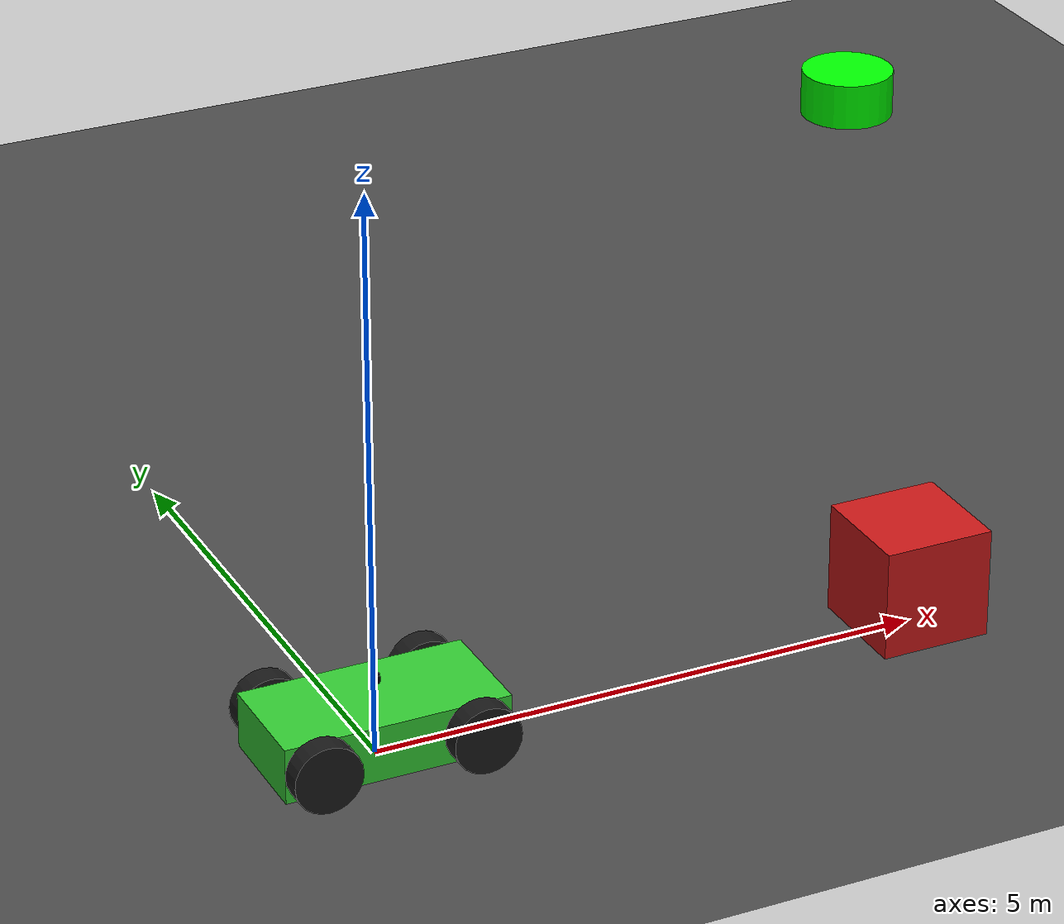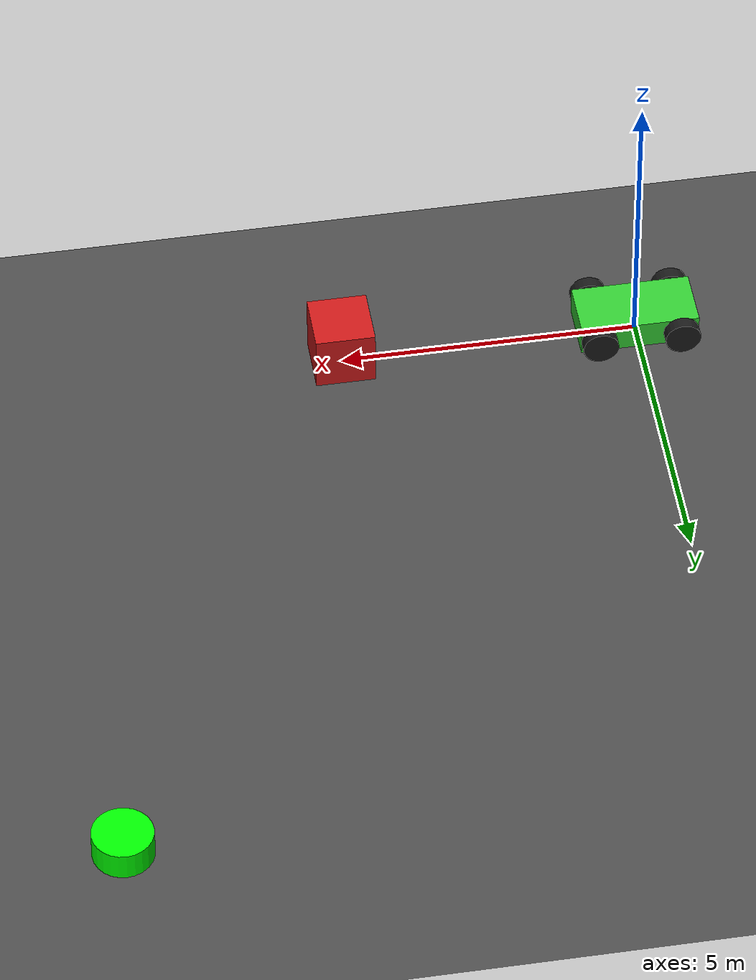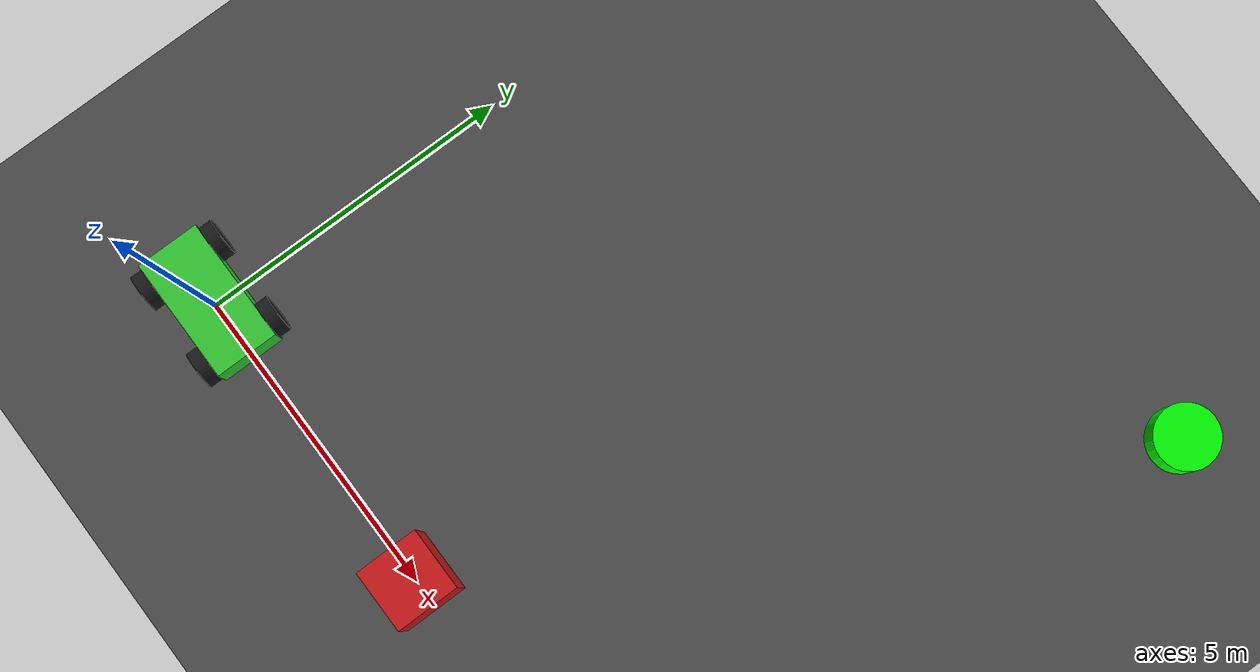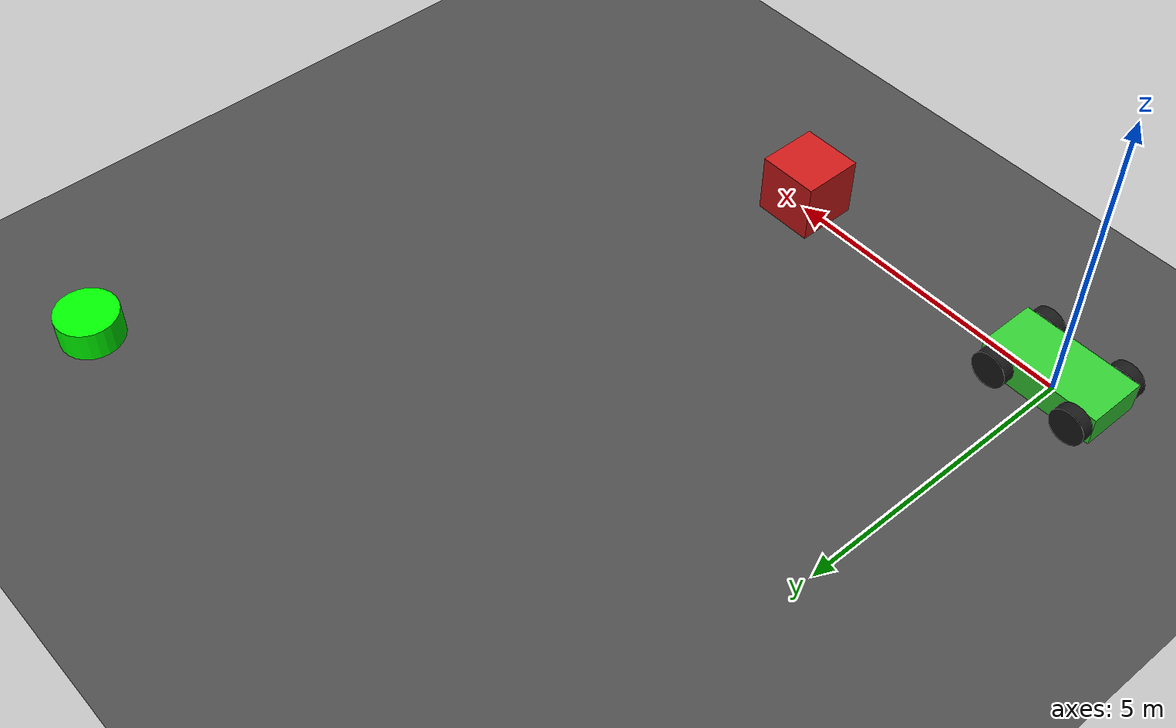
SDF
<?xml version="1.0"?>
<sdf version="1.9">
  <world name="rl_test_world">

    <physics name="1ms" type="ignored">
      <max_step_size>0.001</max_step_size>
      <real_time_factor>1.0</real_time_factor>
    </physics>

    <light type="directional" name="sun">
      <cast_shadows>true</cast_shadows>
      <pose>0 0 10 0 0 0</pose>
      <diffuse>0.8 0.8 0.8 1</diffuse>
      <specular>0.2 0.2 0.2 1</specular>
      <direction>-0.5 0.1 -0.9</direction>
    </light>

    <model name="ground_plane">
      <static>true</static>
      <link name="link">
        <collision name="collision">
          <geometry>
            <plane>
              <normal>0 0 1</normal>
              <size>30 30</size>
            </plane>
          </geometry>
        </collision>
        <visual name="visual">
          <geometry>
            <plane>
              <normal>0 0 1</normal>
              <size>30 30</size>
            </plane>
          </geometry>
          <material>
            <ambient>0.3 0.3 0.3 1</ambient>
            <diffuse>0.3 0.3 0.3 1</diffuse>
          </material>
        </visual>
      </link>
    </model>

    <!-- Test obstacle -->
    <model name="obstacle_1">
      <static>true</static>
      <pose>5 0 0.5 0 0 0</pose>
      <link name="link">
        <collision name="collision">
          <geometry>
            <box>
              <size>1 1 1</size>
            </box>
          </geometry>
        </collision>
        <visual name="visual">
          <geometry>
            <box>
              <size>1 1 1</size>
            </box>
          </geometry>
          <material>
            <ambient>0.8 0.1 0.1 1</ambient>
            <diffuse>0.8 0.1 0.1 1</diffuse>
          </material>
        </visual>
      </link>
    </model>

    <!-- Goal marker -->
    <model name="goal">
      <static>true</static>
      <pose>10 10 0.25 0 0 0</pose>
      <link name="link">
        <visual name="visual">
          <geometry>
            <cylinder>
              <radius>0.5</radius>
              <length>0.5</length>
            </cylinder>
          </geometry>
          <material>
            <ambient>0.0 1.0 0.0 1</ambient>
            <diffuse>0.0 1.0 0.0 1</diffuse>
            <emissive>0.0 0.5 0.0 1</emissive>
          </material>
        </visual>
      </link>
    </model>

    <!-- Include the training car model (inline for simplicity) -->
    <model name="robot">
      <pose>0 0 0 0 0 0</pose>

      <!-- Base Link -->
      <link name="base_link">
        <pose>0 0 0.3 0 0 0</pose>
        <inertial>
          <mass>100.0</mass>
          <inertia>
            <ixx>10.0</ixx>
            <iyy>10.0</iyy>
            <izz>10.0</izz>
          </inertia>
        </inertial>
        <collision name="collision">
          <geometry>
            <box>
              <size>2.0 1.0 0.5</size>
            </box>
          </geometry>
        </collision>
        <visual name="visual">
          <geometry>
            <box>
              <size>2.0 1.0 0.5</size>
            </box>
          </geometry>
          <material>
            <ambient>0.2 0.8 0.2 1.0</ambient>
            <diffuse>0.2 0.8 0.2 1.0</diffuse>
          </material>
        </visual>
      </link>

      <!-- LiDAR -->
      <link name="lidar_link">
        <pose relative_to="base_link">0 0 0.4 0 0 0</pose>
        <inertial>
          <mass>0.1</mass>
          <inertia>
            <ixx>0.001</ixx>
            <iyy>0.001</iyy>
            <izz>0.001</izz>
          </inertia>
        </inertial>
        <visual name="visual">
          <geometry>
            <cylinder>
              <radius>0.05</radius>
              <length>0.07</length>
            </cylinder>
          </geometry>
          <material>
            <ambient>0.0 0.0 0.0 1.0</ambient>
            <diffuse>0.0 0.0 0.0 1.0</diffuse>
          </material>
        </visual>
        <sensor name="lidar" type="gpu_lidar">
          <topic>/scan</topic>
          <update_rate>10</update_rate>
          <lidar>
            <scan>
              <horizontal>
                <samples>360</samples>
                <resolution>1</resolution>
                <min_angle>-3.14159</min_angle>
                <max_angle>3.14159</max_angle>
              </horizontal>
            </scan>
            <range>
              <min>0.1</min>
              <max>10.0</max>
              <resolution>0.01</resolution>
            </range>
            <noise>
              <type>gaussian</type>
              <mean>0.0</mean>
              <stddev>0.01</stddev>
            </noise>
          </lidar>
          <always_on>1</always_on>
          <visualize>true</visualize>
        </sensor>
      </link>
      <joint name="lidar_joint" type="fixed">
        <parent>base_link</parent>
        <child>lidar_link</child>
      </joint>

      <!-- Wheels -->
      <link name="front_left_wheel">
        <pose relative_to="base_link">0.7 0.6 0 -1.5708 0 0</pose>
        <inertial>
          <mass>5.0</mass>
          <inertia>
            <ixx>0.1</ixx>
            <iyy>0.1</iyy>
            <izz>0.1</izz>
          </inertia>
        </inertial>
        <collision name="collision">
          <geometry>
            <cylinder>
              <radius>0.3</radius>
              <length>0.2</length>
            </cylinder>
          </geometry>
        </collision>
        <visual name="visual">
          <geometry>
            <cylinder>
              <radius>0.3</radius>
              <length>0.2</length>
            </cylinder>
          </geometry>
          <material>
            <ambient>0.1 0.1 0.1 1.0</ambient>
            <diffuse>0.1 0.1 0.1 1.0</diffuse>
          </material>
        </visual>
      </link>
      <joint name="front_left_wheel_joint" type="revolute">
        <parent>base_link</parent>
        <child>front_left_wheel</child>
        <axis>
          <xyz>0 0 1</xyz>
        </axis>
      </joint>

      <link name="front_right_wheel">
        <pose relative_to="base_link">0.7 -0.6 0 -1.5708 0 0</pose>
        <inertial>
          <mass>5.0</mass>
          <inertia>
            <ixx>0.1</ixx>
            <iyy>0.1</iyy>
            <izz>0.1</izz>
          </inertia>
        </inertial>
        <collision name="collision">
          <geometry>
            <cylinder>
              <radius>0.3</radius>
              <length>0.2</length>
            </cylinder>
          </geometry>
        </collision>
        <visual name="visual">
          <geometry>
            <cylinder>
              <radius>0.3</radius>
              <length>0.2</length>
            </cylinder>
          </geometry>
          <material>
            <ambient>0.1 0.1 0.1 1.0</ambient>
            <diffuse>0.1 0.1 0.1 1.0</diffuse>
          </material>
        </visual>
      </link>
      <joint name="front_right_wheel_joint" type="revolute">
        <parent>base_link</parent>
        <child>front_right_wheel</child>
        <axis>
          <xyz>0 0 1</xyz>
        </axis>
      </joint>

      <link name="rear_left_wheel">
        <pose relative_to="base_link">-0.7 0.6 0 -1.5708 0 0</pose>
        <inertial>
          <mass>5.0</mass>
          <inertia>
            <ixx>0.1</ixx>
            <iyy>0.1</iyy>
            <izz>0.1</izz>
          </inertia>
        </inertial>
        <collision name="collision">
          <geometry>
            <cylinder>
              <radius>0.3</radius>
              <length>0.2</length>
            </cylinder>
          </geometry>
        </collision>
        <visual name="visual">
          <geometry>
            <cylinder>
              <radius>0.3</radius>
              <length>0.2</length>
            </cylinder>
          </geometry>
          <material>
            <ambient>0.1 0.1 0.1 1.0</ambient>
            <diffuse>0.1 0.1 0.1 1.0</diffuse>
          </material>
        </visual>
      </link>
      <joint name="rear_left_wheel_joint" type="revolute">
        <parent>base_link</parent>
        <child>rear_left_wheel</child>
        <axis>
          <xyz>0 0 1</xyz>
        </axis>
      </joint>

      <link name="rear_right_wheel">
        <pose relative_to="base_link">-0.7 -0.6 0 -1.5708 0 0</pose>
        <inertial>
          <mass>5.0</mass>
          <inertia>
            <ixx>0.1</ixx>
            <iyy>0.1</iyy>
            <izz>0.1</izz>
          </inertia>
        </inertial>
        <collision name="collision">
          <geometry>
            <cylinder>
              <radius>0.3</radius>
              <length>0.2</length>
            </cylinder>
          </geometry>
        </collision>
        <visual name="visual">
          <geometry>
            <cylinder>
              <radius>0.3</radius>
              <length>0.2</length>
            </cylinder>
          </geometry>
          <material>
            <ambient>0.1 0.1 0.1 1.0</ambient>
            <diffuse>0.1 0.1 0.1 1.0</diffuse>
          </material>
        </visual>
      </link>
      <joint name="rear_right_wheel_joint" type="revolute">
        <parent>base_link</parent>
        <child>rear_right_wheel</child>
        <axis>
          <xyz>0 0 1</xyz>
        </axis>
      </joint>

      <!-- Differential Drive Plugin -->
      <plugin filename="gz-sim-diff-drive-system" name="gz::sim::systems::DiffDrive">
        <left_joint>front_left_wheel_joint</left_joint>
        <left_joint>rear_left_wheel_joint</left_joint>
        <right_joint>front_right_wheel_joint</right_joint>
        <right_joint>rear_right_wheel_joint</right_joint>
        <wheel_separation>1.2</wheel_separation>
        <wheel_radius>0.3</wheel_radius>
        <max_linear_acceleration>2.0</max_linear_acceleration>
        <max_angular_acceleration>3.0</max_angular_acceleration>
        <max_linear_velocity>3.0</max_linear_velocity>
        <max_angular_velocity>2.0</max_angular_velocity>
        <odom_publish_frequency>50</odom_publish_frequency>
        <topic>/cmd_vel</topic>
        <odom_topic>/odom</odom_topic>
        <frame_id>odom</frame_id>
        <child_frame_id>base_link</child_frame_id>
      </plugin>
    </model>

    <!-- Plugins -->
    <plugin filename="gz-sim-physics-system" name="gz::sim::systems::Physics"></plugin>
    <plugin filename="gz-sim-user-commands-system" name="gz::sim::systems::UserCommands"></plugin>
    <plugin filename="gz-sim-scene-broadcaster-system" name="gz::sim::systems::SceneBroadcaster"></plugin>
    <plugin filename="gz-sim-sensors-system" name="gz::sim::systems::Sensors">
      <render_engine>ogre2</render_engine>
    </plugin>

  </world>
</sdf>
